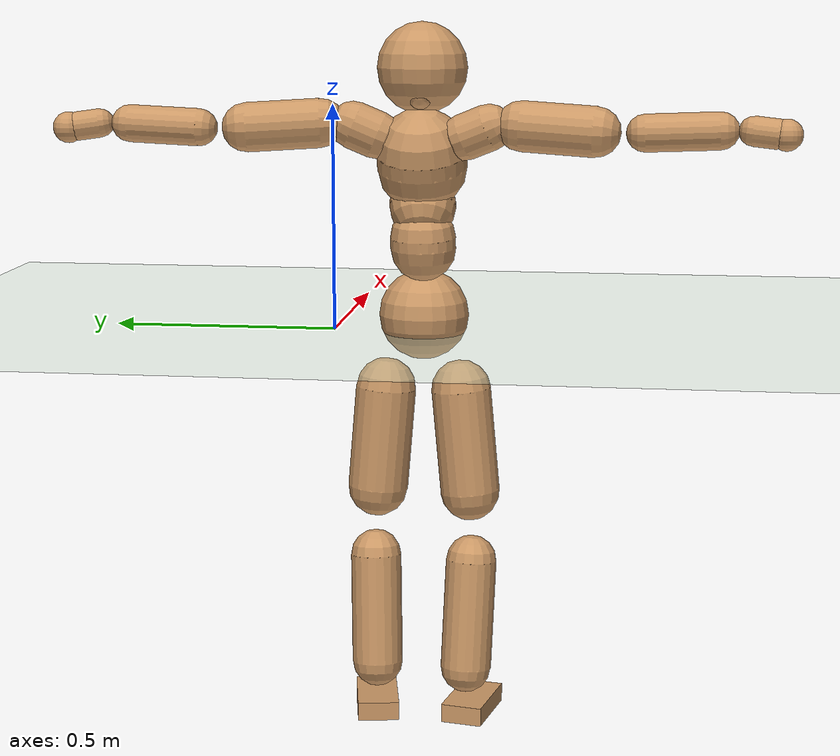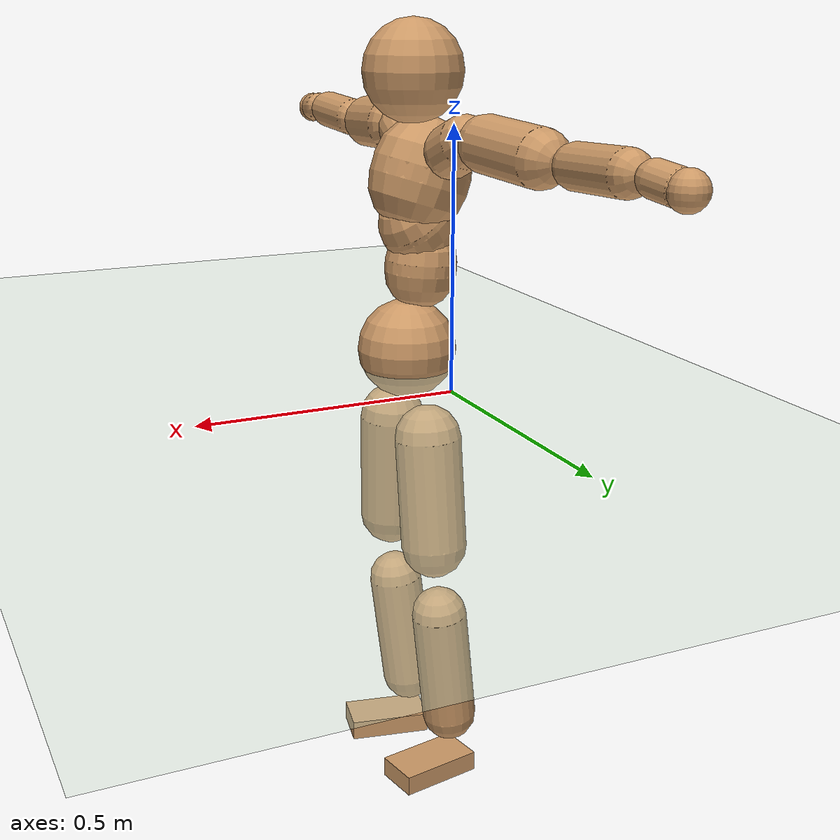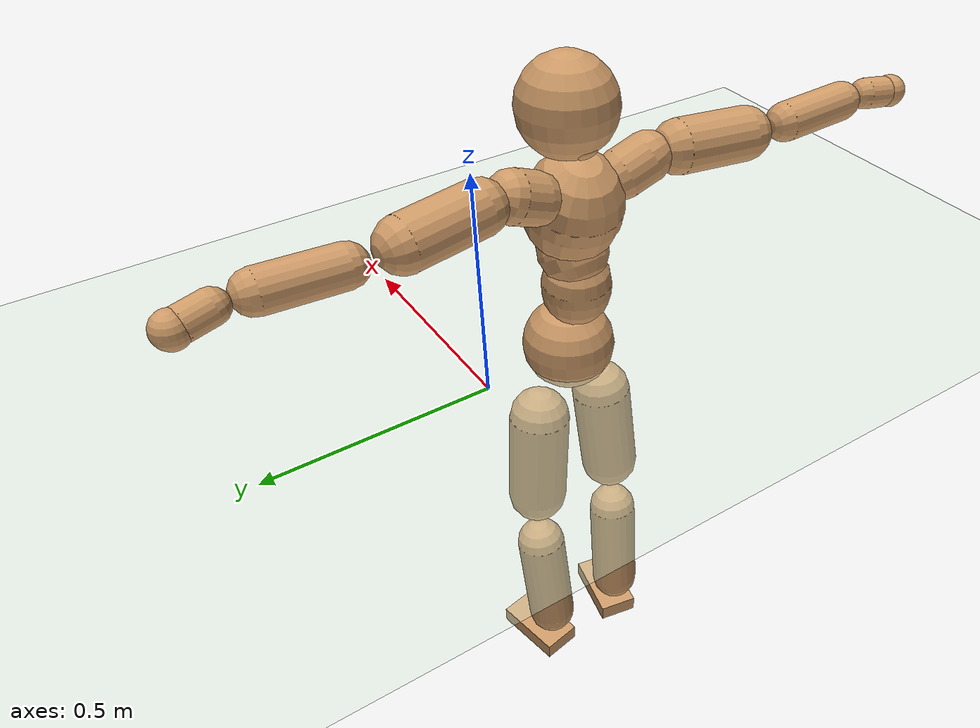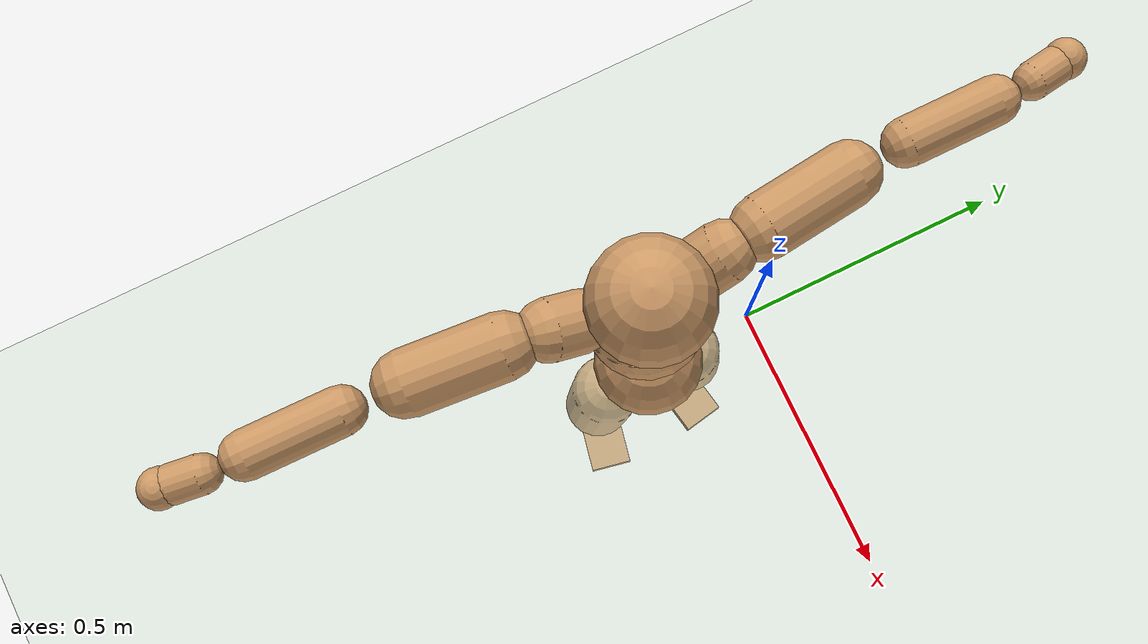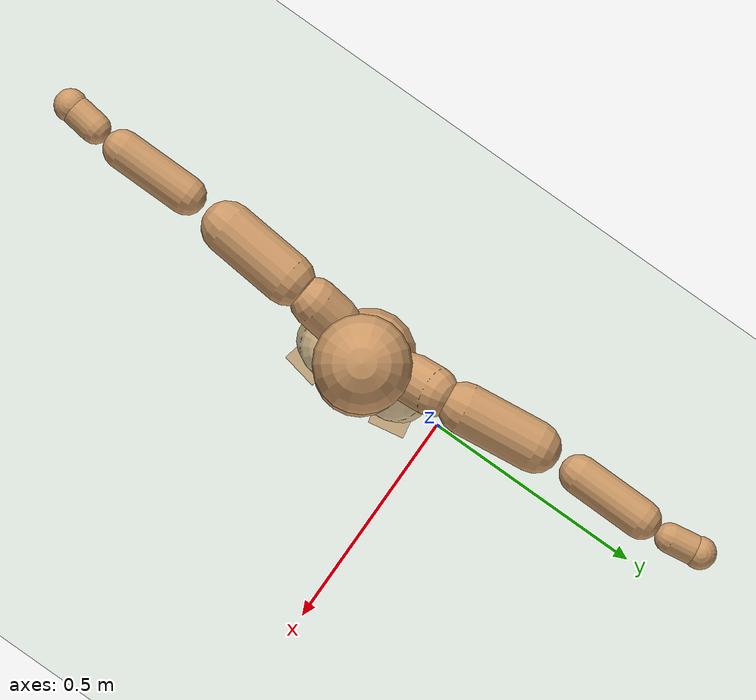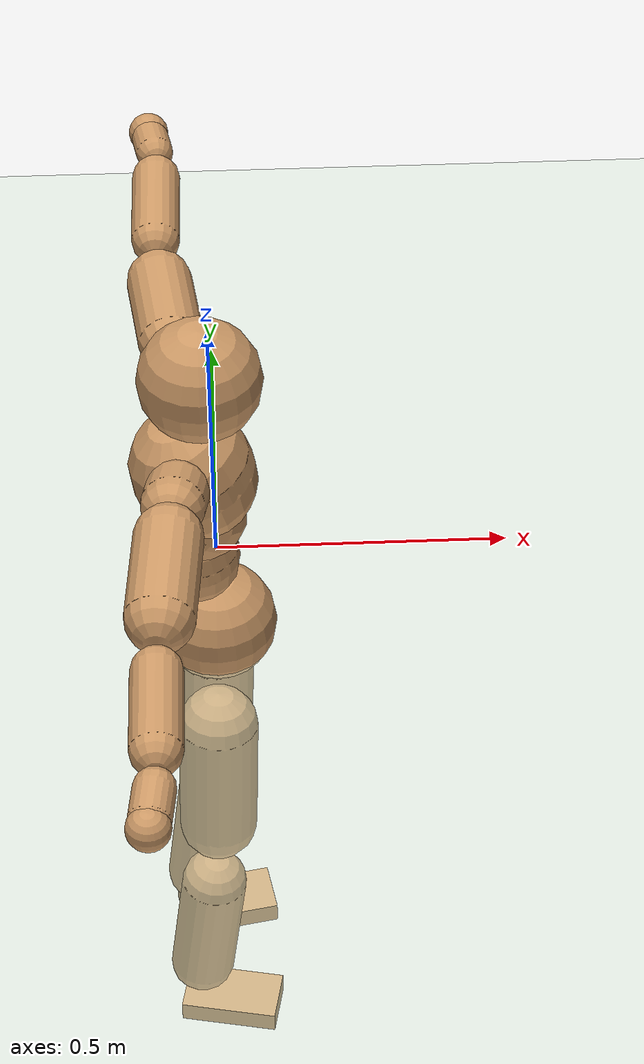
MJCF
<mujoco model="humanoid">
  <compiler coordinate="local"/>
  <default>
    <joint damping="0.0" armature="0.01" stiffness="0.0" limited="true"/>
    <geom conaffinity="1" condim="3" contype="7" margin="0.001" rgba="0.8 0.6 .4 1"/>
  </default>
  <asset>
    <texture type="skybox" builtin="gradient" rgb1=".4 .5 .6" rgb2="0 0 0" width="100" height="100"/>
    <texture builtin="flat" height="1278" mark="cross" markrgb="1 1 1" name="texgeom" random="0.01" rgb1="0.8 0.6 0.4" rgb2="0.8 0.6 0.4" type="cube" width="127"/>
    <texture builtin="checker" height="100" name="texplane" rgb1="0 0 0" rgb2="0.8 0.8 0.8" type="2d" width="100"/>
    <material name="MatPlane" reflectance="0.5" shininess="1" specular="1" texrepeat="60 60" texture="texplane"/>
    <material name="geom" texture="texgeom" texuniform="true"/>
  </asset>
  <worldbody>
    <light cutoff="100" diffuse="1 1 1" dir="-0 0 -1.3" directional="true" exponent="1" pos="0 0 1.3" specular=".1 .1 .1"/>
    <geom conaffinity="1" condim="3" name="floor" pos="0 0 0" rgba="0.8 0.9 0.8 1" size="100 100 .2" type="plane" material="MatPlane"/>
    <body name="Pelvis" pos="0.0002 -0.2022 0.038">
      <freejoint name="Pelvis"/>
      <geom type="sphere" contype="1" conaffinity="1" density="500" size="0.1001" pos="0.0000 0.0000 0.0000" name="Pelvis"/>
      <body name="L_Hip" pos="-0.0056 0.0793 -0.0917">
        <joint name="L_Hip_x" type="hinge" pos="0 0 0" axis="1 0 0" stiffness="800" damping="80" armature="0.02" range="-180.0000 180.0000"/>
        <joint name="L_Hip_y" type="hinge" pos="0 0 0" axis="0 1 0" stiffness="800" damping="80" armature="0.02" range="-180.0000 180.0000"/>
        <joint name="L_Hip_z" type="hinge" pos="0 0 0" axis="0 0 1" stiffness="800" damping="80" armature="0.02" range="-180.0000 180.0000"/>
        <geom type="capsule" contype="1" conaffinity="1" density="500" fromto="-0.0021 0.0059 -0.0760 -0.0084 0.0238 -0.3042" size="0.0673" name="L_Hip"/>
        <body name="L_Knee" pos="-0.0105 0.0297 -0.3802">
          <joint name="L_Knee_x" type="hinge" pos="0 0 0" axis="1 0 0" stiffness="800" damping="80" armature="0.02" range="-180.0000 180.0000"/>
          <joint name="L_Knee_y" type="hinge" pos="0 0 0" axis="0 1 0" stiffness="800" damping="80" armature="0.02" range="-180.0000 180.0000"/>
          <joint name="L_Knee_z" type="hinge" pos="0 0 0" axis="0 0 1" stiffness="800" damping="80" armature="0.02" range="-180.0000 180.0000"/>
          <geom type="capsule" contype="1" conaffinity="1" density="500" fromto="-0.0097 -0.0023 -0.0818 -0.0388 -0.0091 -0.3272" size="0.0568" name="L_Knee"/>
          <body name="L_Ankle" pos="-0.0485 -0.0114 -0.409">
            <joint name="L_Ankle_x" type="hinge" pos="0 0 0" axis="1 0 0" stiffness="800" damping="80" armature="0.02" range="-180.0000 180.0000"/>
            <joint name="L_Ankle_y" type="hinge" pos="0 0 0" axis="0 1 0" stiffness="800" damping="80" armature="0.02" range="-180.0000 180.0000"/>
            <joint name="L_Ankle_z" type="hinge" pos="0 0 0" axis="0 0 1" stiffness="800" damping="80" armature="0.02" range="-180.0000 180.0000"/>
            <geom type="box" contype="1" conaffinity="1" density="500" pos="0.0596 0.0108 -0.0291" size="0.0867 0.0466 0.0209" quat="0.9960 0.0000 0.0000 0.0894" name="L_Ankle"/>
            <body name="L_Toe" pos="0.1192 0.0216 -0.0582">
              <joint name="L_Toe_x" type="hinge" pos="0 0 0" axis="1 0 0" stiffness="500" damping="50" armature="0.02" range="-180.0000 180.0000"/>
              <joint name="L_Toe_y" type="hinge" pos="0 0 0" axis="0 1 0" stiffness="500" damping="50" armature="0.02" range="-180.0000 180.0000"/>
              <joint name="L_Toe_z" type="hinge" pos="0 0 0" axis="0 0 1" stiffness="500" damping="50" armature="0.02" range="-180.0000 180.0000"/>
              <geom type="box" contype="1" conaffinity="1" density="500" pos="0.0000 0.0000 0.0285" size="0.0009 0.0023 0.001" quat="0.9954 0.0000 0.0000 0.0959" name="L_Toe"/>
            </body>
          </body>
        </body>
      </body>
      <body name="R_Hip" pos="-0.0016 -0.0767 -0.0912">
        <joint name="R_Hip_x" type="hinge" pos="0 0 0" axis="1 0 0" stiffness="800" damping="80" armature="0.02" range="-180.0000 180.0000"/>
        <joint name="R_Hip_y" type="hinge" pos="0 0 0" axis="0 1 0" stiffness="800" damping="80" armature="0.02" range="-180.0000 180.0000"/>
        <joint name="R_Hip_z" type="hinge" pos="0 0 0" axis="0 0 1" stiffness="800" damping="80" armature="0.02" range="-180.0000 180.0000"/>
        <geom type="capsule" contype="1" conaffinity="1" density="500" fromto="-0.0024 -0.0074 -0.0775 -0.0096 -0.0296 -0.3100" size="0.0667" name="R_Hip"/>
        <body name="R_Knee" pos="-0.012 -0.037 -0.3875">
          <joint name="R_Knee_x" type="hinge" pos="0 0 0" axis="1 0 0" stiffness="800" damping="80" armature="0.02" range="-180.0000 180.0000"/>
          <joint name="R_Knee_y" type="hinge" pos="0 0 0" axis="0 1 0" stiffness="800" damping="80" armature="0.02" range="-180.0000 180.0000"/>
          <joint name="R_Knee_z" type="hinge" pos="0 0 0" axis="0 0 1" stiffness="800" damping="80" armature="0.02" range="-180.0000 180.0000"/>
          <geom type="capsule" contype="1" conaffinity="1" density="500" fromto="-0.0094 0.0028 -0.0819 -0.0376 0.0111 -0.3275" size="0.0569" name="R_Knee"/>
          <body name="R_Ankle" pos="-0.047 0.0139 -0.4094">
            <joint name="R_Ankle_x" type="hinge" pos="0 0 0" axis="1 0 0" stiffness="800" damping="80" armature="0.02" range="-180.0000 180.0000"/>
            <joint name="R_Ankle_y" type="hinge" pos="0 0 0" axis="0 1 0" stiffness="800" damping="80" armature="0.02" range="-180.0000 180.0000"/>
            <joint name="R_Ankle_z" type="hinge" pos="0 0 0" axis="0 0 1" stiffness="800" damping="80" armature="0.02" range="-180.0000 180.0000"/>
            <geom type="box" contype="1" conaffinity="1" density="500" pos="0.0613 -0.0122 -0.0243" size="0.0863 0.0468 0.0209" quat="0.9952 0.0000 0.0000 -0.0979" name="R_Ankle"/>
            <body name="R_Toe" pos="0.1225 -0.0244 -0.0486">
              <joint name="R_Toe_x" type="hinge" pos="0 0 0" axis="1 0 0" stiffness="500" damping="50" armature="0.02" range="-180.0000 180.0000"/>
              <joint name="R_Toe_y" type="hinge" pos="0 0 0" axis="0 1 0" stiffness="500" damping="50" armature="0.02" range="-180.0000 180.0000"/>
              <joint name="R_Toe_z" type="hinge" pos="0 0 0" axis="0 0 1" stiffness="500" damping="50" armature="0.02" range="-180.0000 180.0000"/>
              <geom type="box" contype="1" conaffinity="1" density="500" pos="0.0000 0.0000 0.0263" size="0.0009 0.0023 0.0011" quat="0.9961 0.0000 0.0000 -0.0887" name="R_Toe"/>
            </body>
          </body>
        </body>
      </body>
      <body name="Torso" pos="-0.0264 -0.0024 0.1044">
        <joint name="Torso_x" type="hinge" pos="0 0 0" axis="1 0 0" stiffness="1000" damping="100" armature="0.02" range="-180.0000 180.0000"/>
        <joint name="Torso_y" type="hinge" pos="0 0 0" axis="0 1 0" stiffness="1000" damping="100" armature="0.02" range="-180.0000 180.0000"/>
        <joint name="Torso_z" type="hinge" pos="0 0 0" axis="0 0 1" stiffness="1000" damping="100" armature="0.02" range="-180.0000 180.0000"/>
        <geom type="capsule" contype="1" conaffinity="1" density="500" fromto="-0.0053 0.0009 0.0716 -0.0036 0.0006 0.0477" size="0.0723" name="Torso"/>
        <body name="Spine" pos="-0.0089 0.0015 0.1193">
          <joint name="Spine_x" type="hinge" pos="0 0 0" axis="1 0 0" stiffness="1000" damping="100" armature="0.02" range="-180.0000 180.0000"/>
          <joint name="Spine_y" type="hinge" pos="0 0 0" axis="0 1 0" stiffness="1000" damping="100" armature="0.02" range="-180.0000 180.0000"/>
          <joint name="Spine_z" type="hinge" pos="0 0 0" axis="0 0 1" stiffness="1000" damping="100" armature="0.02" range="-180.0000 180.0000"/>
          <geom type="capsule" contype="1" conaffinity="1" density="500" fromto="0.0190 0.0015 0.0279 0.0126 0.0010 0.0186" size="0.0732" name="Spine"/>
          <body name="Chest" pos="0.0316 0.0026 0.0464">
            <joint name="Chest_x" type="hinge" pos="0 0 0" axis="1 0 0" stiffness="1000" damping="100" armature="0.02" range="-180.0000 180.0000"/>
            <joint name="Chest_y" type="hinge" pos="0 0 0" axis="0 1 0" stiffness="1000" damping="100" armature="0.02" range="-180.0000 180.0000"/>
            <joint name="Chest_z" type="hinge" pos="0 0 0" axis="0 0 1" stiffness="1000" damping="100" armature="0.02" range="-180.0000 180.0000"/>
            <geom type="capsule" contype="1" conaffinity="1" density="500" fromto="-0.0292 -0.0003 0.0916 -0.0194 -0.0002 0.0610" size="0.0989" name="Chest"/>
            <body name="Neck" pos="-0.058 -0.0012 0.2152">
              <joint name="Neck_x" type="hinge" pos="0 0 0" axis="1 0 0" stiffness="500" damping="50" armature="0.02" range="-180.0000 180.0000"/>
              <joint name="Neck_y" type="hinge" pos="0 0 0" axis="0 1 0" stiffness="500" damping="50" armature="0.02" range="-180.0000 180.0000"/>
              <joint name="Neck_z" type="hinge" pos="0 0 0" axis="0 0 1" stiffness="500" damping="50" armature="0.02" range="-180.0000 180.0000"/>
              <geom type="capsule" contype="1" conaffinity="1" density="500" fromto="0.0100 0.0004 0.0117 0.0401 0.0017 0.0469" size="0.041" name="Neck"/>
              <body name="Head" pos="0.0501 0.0021 0.0586">
                <joint name="Head_x" type="hinge" pos="0 0 0" axis="1 0 0" stiffness="500" damping="50" armature="0.02" range="-180.0000 180.0000"/>
                <joint name="Head_y" type="hinge" pos="0 0 0" axis="0 1 0" stiffness="500" damping="50" armature="0.02" range="-180.0000 180.0000"/>
                <joint name="Head_z" type="hinge" pos="0 0 0" axis="0 0 1" stiffness="500" damping="50" armature="0.02" range="-180.0000 180.0000"/>
                <geom type="sphere" contype="1" conaffinity="1" density="500" size="0.0994" pos="0.0000 0.0000 0.0000" name="Head"/>
              </body>
            </body>
            <body name="L_Thorax" pos="-0.041 0.0775 0.1222">
              <joint name="L_Thorax_x" type="hinge" pos="0 0 0" axis="1 0 0" stiffness="500" damping="50" armature="0.02" range="-180.0000 180.0000"/>
              <joint name="L_Thorax_y" type="hinge" pos="0 0 0" axis="0 1 0" stiffness="500" damping="50" armature="0.02" range="-180.0000 180.0000"/>
              <joint name="L_Thorax_z" type="hinge" pos="0 0 0" axis="0 0 1" stiffness="500" damping="50" armature="0.02" range="-180.0000 180.0000"/>
              <geom type="capsule" contype="1" conaffinity="1" density="500" fromto="-0.0013 0.0173 0.0074 -0.0054 0.0692 0.0294" size="0.0523" name="L_Thorax"/>
              <body name="L_Shoulder" pos="-0.0067 0.0865 0.0368">
                <joint name="L_Shoulder_x" type="hinge" pos="0 0 0" axis="1 0 0" stiffness="500" damping="50" armature="0.02" range="-720.0000 720.0000"/>
                <joint name="L_Shoulder_y" type="hinge" pos="0 0 0" axis="0 1 0" stiffness="500" damping="50" armature="0.02" range="-720.0000 720.0000"/>
                <joint name="L_Shoulder_z" type="hinge" pos="0 0 0" axis="0 0 1" stiffness="500" damping="50" armature="0.02" range="-720.0000 720.0000"/>
                <geom type="capsule" contype="1" conaffinity="1" density="500" fromto="-0.0064 0.0533 -0.0031 -0.0258 0.2132 -0.0124" size="0.0541" name="L_Shoulder"/>
                <body name="L_Elbow" pos="-0.0322 0.2665 -0.0155">
                  <joint name="L_Elbow_x" type="hinge" pos="0 0 0" axis="1 0 0" stiffness="500" damping="50" armature="0.02" range="-720.0000 720.0000"/>
                  <joint name="L_Elbow_y" type="hinge" pos="0 0 0" axis="0 1 0" stiffness="500" damping="50" armature="0.02" range="-720.0000 720.0000"/>
                  <joint name="L_Elbow_z" type="hinge" pos="0 0 0" axis="0 0 1" stiffness="500" damping="50" armature="0.02" range="-720.0000 720.0000"/>
                  <geom type="capsule" contype="1" conaffinity="1" density="500" fromto="0.0005 0.0512 0.0024 0.0022 0.2047 0.0095" size="0.0408" name="L_Elbow"/>
                  <body name="L_Wrist" pos="0.0027 0.2558 0.0119">
                    <joint name="L_Wrist_x" type="hinge" pos="0 0 0" axis="1 0 0" stiffness="300" damping="30" armature="0.02" range="-180.0000 180.0000"/>
                    <joint name="L_Wrist_y" type="hinge" pos="0 0 0" axis="0 1 0" stiffness="300" damping="30" armature="0.02" range="-180.0000 180.0000"/>
                    <joint name="L_Wrist_z" type="hinge" pos="0 0 0" axis="0 0 1" stiffness="300" damping="30" armature="0.02" range="-180.0000 180.0000"/>
                    <geom type="capsule" contype="1" conaffinity="1" density="500" fromto="-0.0027 0.0168 -0.0023 -0.0107 0.0673 -0.0092" size="0.0315" name="L_Wrist"/>
                    <body name="L_Hand" pos="-0.0134 0.0842 -0.0115">
                      <joint name="L_Hand_x" type="hinge" pos="0 0 0" axis="1 0 0" stiffness="300" damping="30" armature="0.02" range="-180.0000 180.0000"/>
                      <joint name="L_Hand_y" type="hinge" pos="0 0 0" axis="0 1 0" stiffness="300" damping="30" armature="0.02" range="-180.0000 180.0000"/>
                      <joint name="L_Hand_z" type="hinge" pos="0 0 0" axis="0 0 1" stiffness="300" damping="30" armature="0.02" range="-180.0000 180.0000"/>
                      <geom type="sphere" contype="1" conaffinity="1" density="500" size="0.0340" pos="0.0000 0.0000 0.0000" name="L_Hand"/>
                    </body>
                  </body>
                </body>
              </body>
            </body>
            <body name="R_Thorax" pos="-0.0468 -0.0779 0.1204">
              <joint name="R_Thorax_x" type="hinge" pos="0 0 0" axis="1 0 0" stiffness="500" damping="50" armature="0.02" range="-180.0000 180.0000"/>
              <joint name="R_Thorax_y" type="hinge" pos="0 0 0" axis="0 1 0" stiffness="500" damping="50" armature="0.02" range="-180.0000 180.0000"/>
              <joint name="R_Thorax_z" type="hinge" pos="0 0 0" axis="0 0 1" stiffness="500" damping="50" armature="0.02" range="-180.0000 180.0000"/>
              <geom type="capsule" contype="1" conaffinity="1" density="500" fromto="-0.0021 -0.0179 0.0073 -0.0085 -0.0717 0.0293" size="0.051" name="R_Thorax"/>
              <body name="R_Shoulder" pos="-0.0106 -0.0896 0.0366">
                <joint name="R_Shoulder_x" type="hinge" pos="0 0 0" axis="1 0 0" stiffness="500" damping="50" armature="0.02" range="-720.0000 720.0000"/>
                <joint name="R_Shoulder_y" type="hinge" pos="0 0 0" axis="0 1 0" stiffness="500" damping="50" armature="0.02" range="-720.0000 720.0000"/>
                <joint name="R_Shoulder_z" type="hinge" pos="0 0 0" axis="0 0 1" stiffness="500" damping="50" armature="0.02" range="-720.0000 720.0000"/>
                <geom type="capsule" contype="1" conaffinity="1" density="500" fromto="-0.0048 -0.0528 -0.0032 -0.0192 -0.2110 -0.0127" size="0.0551" name="R_Shoulder"/>
                <body name="R_Elbow" pos="-0.024 -0.2638 -0.0158">
                  <joint name="R_Elbow_x" type="hinge" pos="0 0 0" axis="1 0 0" stiffness="500" damping="50" armature="0.02" range="-720.0000 720.0000"/>
                  <joint name="R_Elbow_y" type="hinge" pos="0 0 0" axis="0 1 0" stiffness="500" damping="50" armature="0.02" range="-720.0000 720.0000"/>
                  <joint name="R_Elbow_z" type="hinge" pos="0 0 0" axis="0 0 1" stiffness="500" damping="50" armature="0.02" range="-720.0000 720.0000"/>
                  <geom type="capsule" contype="1" conaffinity="1" density="500" fromto="-0.0003 -0.0524 0.0021 -0.0013 -0.2097 0.0083" size="0.0406" name="R_Elbow"/>
                  <body name="R_Wrist" pos="-0.0016 -0.2621 0.0104">
                    <joint name="R_Wrist_x" type="hinge" pos="0 0 0" axis="1 0 0" stiffness="300" damping="30" armature="0.02" range="-180.0000 180.0000"/>
                    <joint name="R_Wrist_y" type="hinge" pos="0 0 0" axis="0 1 0" stiffness="300" damping="30" armature="0.02" range="-180.0000 180.0000"/>
                    <joint name="R_Wrist_z" type="hinge" pos="0 0 0" axis="0 0 1" stiffness="300" damping="30" armature="0.02" range="-180.0000 180.0000"/>
                    <geom type="capsule" contype="1" conaffinity="1" density="500" fromto="-0.0023 -0.0170 -0.0017 -0.0093 -0.0680 -0.0069" size="0.0323" name="R_Wrist"/>
                    <body name="R_Hand" pos="-0.0116 -0.085 -0.0086">
                      <joint name="R_Hand_x" type="hinge" pos="0 0 0" axis="1 0 0" stiffness="300" damping="30" armature="0.02" range="-180.0000 180.0000"/>
                      <joint name="R_Hand_y" type="hinge" pos="0 0 0" axis="0 1 0" stiffness="300" damping="30" armature="0.02" range="-180.0000 180.0000"/>
                      <joint name="R_Hand_z" type="hinge" pos="0 0 0" axis="0 0 1" stiffness="300" damping="30" armature="0.02" range="-180.0000 180.0000"/>
                      <geom type="sphere" contype="1" conaffinity="1" density="500" size="0.0341" pos="0.0000 0.0000 0.0000" name="R_Hand"/>
                    </body>
                  </body>
                </body>
              </body>
            </body>
          </body>
        </body>
      </body>
    </body>
  </worldbody>
  <actuator>
    <motor name="L_Hip_x" joint="L_Hip_x" gear="500"/>
    <motor name="L_Hip_y" joint="L_Hip_y" gear="500"/>
    <motor name="L_Hip_z" joint="L_Hip_z" gear="500"/>
    <motor name="L_Knee_x" joint="L_Knee_x" gear="500"/>
    <motor name="L_Knee_y" joint="L_Knee_y" gear="500"/>
    <motor name="L_Knee_z" joint="L_Knee_z" gear="500"/>
    <motor name="L_Ankle_x" joint="L_Ankle_x" gear="500"/>
    <motor name="L_Ankle_y" joint="L_Ankle_y" gear="500"/>
    <motor name="L_Ankle_z" joint="L_Ankle_z" gear="500"/>
    <motor name="L_Toe_x" joint="L_Toe_x" gear="500"/>
    <motor name="L_Toe_y" joint="L_Toe_y" gear="500"/>
    <motor name="L_Toe_z" joint="L_Toe_z" gear="500"/>
    <motor name="R_Hip_x" joint="R_Hip_x" gear="500"/>
    <motor name="R_Hip_y" joint="R_Hip_y" gear="500"/>
    <motor name="R_Hip_z" joint="R_Hip_z" gear="500"/>
    <motor name="R_Knee_x" joint="R_Knee_x" gear="500"/>
    <motor name="R_Knee_y" joint="R_Knee_y" gear="500"/>
    <motor name="R_Knee_z" joint="R_Knee_z" gear="500"/>
    <motor name="R_Ankle_x" joint="R_Ankle_x" gear="500"/>
    <motor name="R_Ankle_y" joint="R_Ankle_y" gear="500"/>
    <motor name="R_Ankle_z" joint="R_Ankle_z" gear="500"/>
    <motor name="R_Toe_x" joint="R_Toe_x" gear="500"/>
    <motor name="R_Toe_y" joint="R_Toe_y" gear="500"/>
    <motor name="R_Toe_z" joint="R_Toe_z" gear="500"/>
    <motor name="Torso_x" joint="Torso_x" gear="500"/>
    <motor name="Torso_y" joint="Torso_y" gear="500"/>
    <motor name="Torso_z" joint="Torso_z" gear="500"/>
    <motor name="Spine_x" joint="Spine_x" gear="500"/>
    <motor name="Spine_y" joint="Spine_y" gear="500"/>
    <motor name="Spine_z" joint="Spine_z" gear="500"/>
    <motor name="Chest_x" joint="Chest_x" gear="500"/>
    <motor name="Chest_y" joint="Chest_y" gear="500"/>
    <motor name="Chest_z" joint="Chest_z" gear="500"/>
    <motor name="Neck_x" joint="Neck_x" gear="500"/>
    <motor name="Neck_y" joint="Neck_y" gear="500"/>
    <motor name="Neck_z" joint="Neck_z" gear="500"/>
    <motor name="Head_x" joint="Head_x" gear="500"/>
    <motor name="Head_y" joint="Head_y" gear="500"/>
    <motor name="Head_z" joint="Head_z" gear="500"/>
    <motor name="L_Thorax_x" joint="L_Thorax_x" gear="500"/>
    <motor name="L_Thorax_y" joint="L_Thorax_y" gear="500"/>
    <motor name="L_Thorax_z" joint="L_Thorax_z" gear="500"/>
    <motor name="L_Shoulder_x" joint="L_Shoulder_x" gear="500"/>
    <motor name="L_Shoulder_y" joint="L_Shoulder_y" gear="500"/>
    <motor name="L_Shoulder_z" joint="L_Shoulder_z" gear="500"/>
    <motor name="L_Elbow_x" joint="L_Elbow_x" gear="500"/>
    <motor name="L_Elbow_y" joint="L_Elbow_y" gear="500"/>
    <motor name="L_Elbow_z" joint="L_Elbow_z" gear="500"/>
    <motor name="L_Wrist_x" joint="L_Wrist_x" gear="500"/>
    <motor name="L_Wrist_y" joint="L_Wrist_y" gear="500"/>
    <motor name="L_Wrist_z" joint="L_Wrist_z" gear="500"/>
    <motor name="L_Hand_x" joint="L_Hand_x" gear="500"/>
    <motor name="L_Hand_y" joint="L_Hand_y" gear="500"/>
    <motor name="L_Hand_z" joint="L_Hand_z" gear="500"/>
    <motor name="R_Thorax_x" joint="R_Thorax_x" gear="500"/>
    <motor name="R_Thorax_y" joint="R_Thorax_y" gear="500"/>
    <motor name="R_Thorax_z" joint="R_Thorax_z" gear="500"/>
    <motor name="R_Shoulder_x" joint="R_Shoulder_x" gear="500"/>
    <motor name="R_Shoulder_y" joint="R_Shoulder_y" gear="500"/>
    <motor name="R_Shoulder_z" joint="R_Shoulder_z" gear="500"/>
    <motor name="R_Elbow_x" joint="R_Elbow_x" gear="500"/>
    <motor name="R_Elbow_y" joint="R_Elbow_y" gear="500"/>
    <motor name="R_Elbow_z" joint="R_Elbow_z" gear="500"/>
    <motor name="R_Wrist_x" joint="R_Wrist_x" gear="500"/>
    <motor name="R_Wrist_y" joint="R_Wrist_y" gear="500"/>
    <motor name="R_Wrist_z" joint="R_Wrist_z" gear="500"/>
    <motor name="R_Hand_x" joint="R_Hand_x" gear="500"/>
    <motor name="R_Hand_y" joint="R_Hand_y" gear="500"/>
    <motor name="R_Hand_z" joint="R_Hand_z" gear="500"/>
  </actuator>
  <contact>
    <exclude body1="Torso" body2="Chest"/>
    <exclude body1="Head" body2="Chest"/>
    <exclude body1="R_Knee" body2="R_Toe"/>
    <exclude body1="R_Knee" body2="L_Ankle"/>
    <exclude body1="R_Knee" body2="L_Toe"/>
    <exclude body1="L_Knee" body2="L_Toe"/>
    <exclude body1="L_Knee" body2="R_Ankle"/>
    <exclude body1="L_Knee" body2="R_Toe"/>
    <exclude body1="L_Shoulder" body2="Chest"/>
    <exclude body1="R_Shoulder" body2="Chest"/>
  </contact>
  <sensor/>
  <size njmax="700" nconmax="700"/>
</mujoco>
